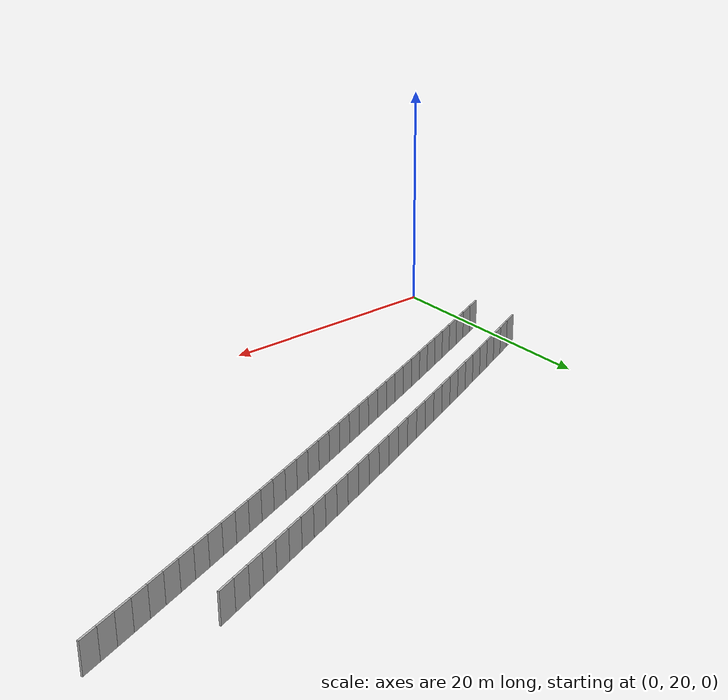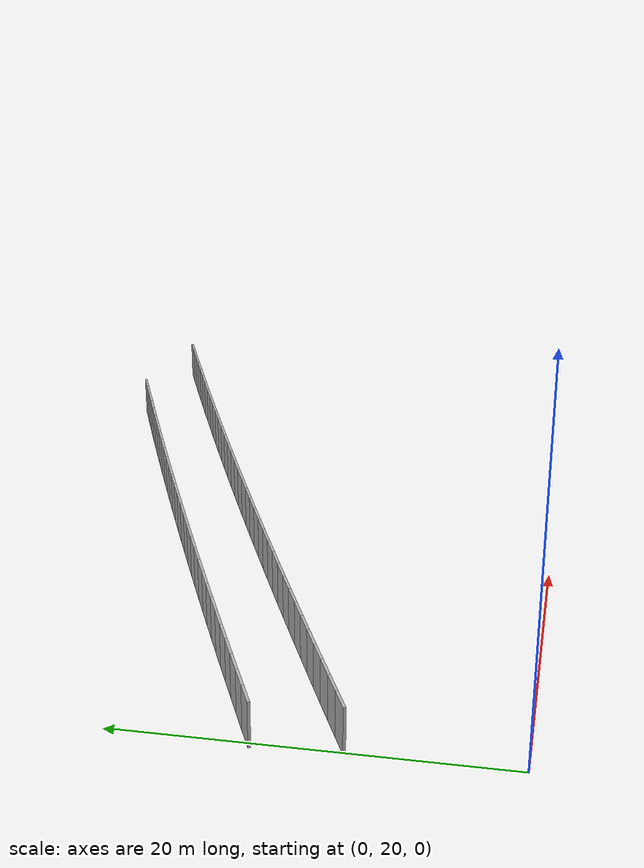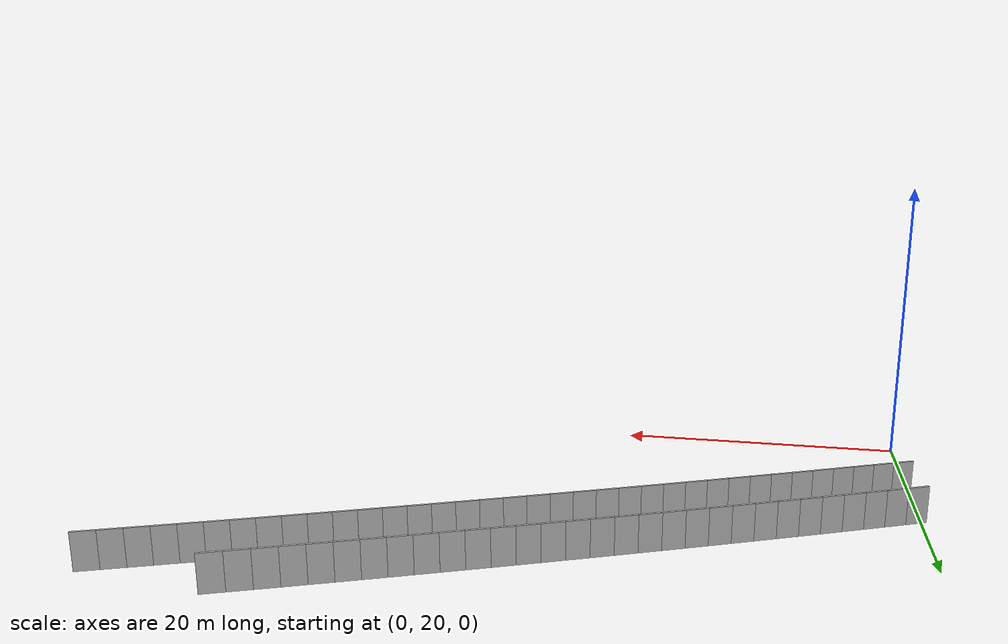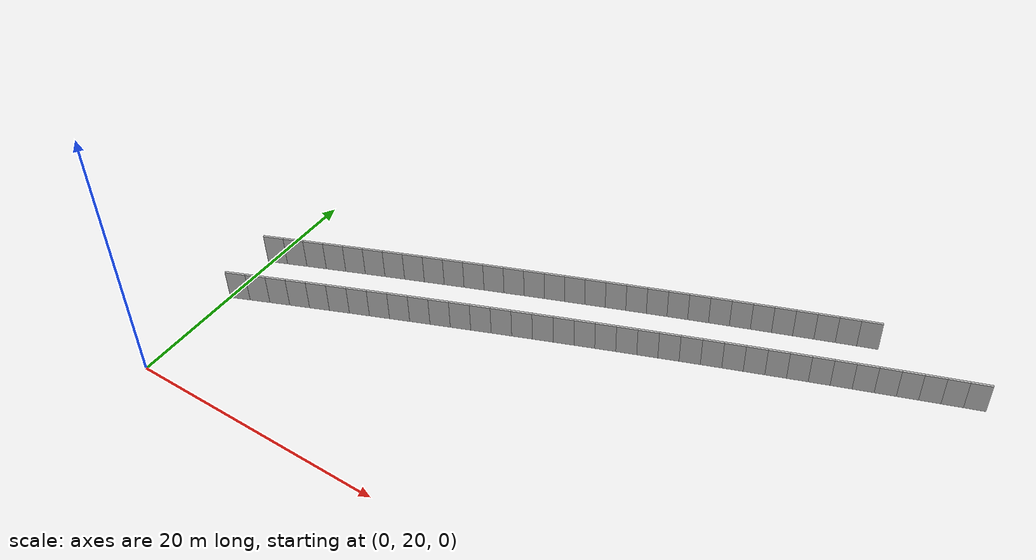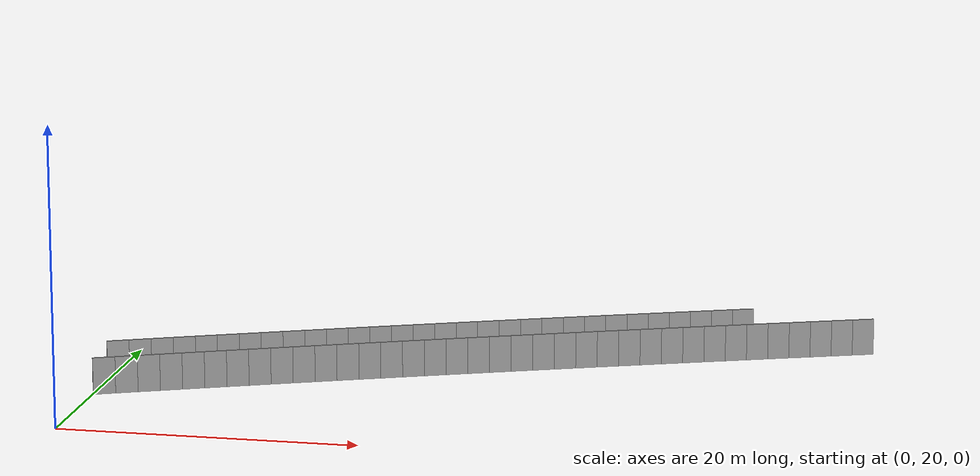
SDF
<?xml version="1.0" ?>
<sdf version="1.6">
  <model name="sps_1645">
    <pose frame="">0 0 0 0 -0 0</pose>
    <static>1</static>
    <self_collide>0</self_collide>
    <allow_auto_disable>0</allow_auto_disable>
    <link name="Wall3091">
      <kinematic>0</kinematic>
      <gravity>1</gravity>
      <self_collide>0</self_collide>
      <collision name="collision">
        <geometry>
          <box>
            <size>1.49646 0.15 2.5</size>
          </box>
        </geometry>
        <pose frame="">0 0 0 0 -0 0</pose>
      </collision>
      <visual name="visual">
        <geometry>
          <box>
            <size>1.49646 0.15 2.5</size>
          </box>
        </geometry>
        <pose frame="">0 0 0 0 -0 0</pose>
        <cast_shadows>1</cast_shadows>
        <transparency>0.0</transparency>
      </visual>
      <pose frame="">49.1362 48.5733 1.25 0 0 -2.78098</pose>
    </link>
    <link name="Wall3092">
      <kinematic>0</kinematic>
      <gravity>1</gravity>
      <self_collide>0</self_collide>
      <collision name="collision">
        <geometry>
          <box>
            <size>1.49649 0.15 2.5</size>
          </box>
        </geometry>
        <pose frame="">0 0 0 0 -0 0</pose>
      </collision>
      <visual name="visual">
        <geometry>
          <box>
            <size>1.49649 0.15 2.5</size>
          </box>
        </geometry>
        <pose frame="">0 0 0 0 -0 0</pose>
        <cast_shadows>1</cast_shadows>
        <transparency>0.0</transparency>
      </visual>
      <pose frame="">47.7364 48.0442 1.25 0 0 -2.77942</pose>
    </link>
    <link name="Wall3093">
      <kinematic>0</kinematic>
      <gravity>1</gravity>
      <self_collide>0</self_collide>
      <collision name="collision">
        <geometry>
          <box>
            <size>1.49645 0.15 2.5</size>
          </box>
        </geometry>
        <pose frame="">0 0 0 0 -0 0</pose>
      </collision>
      <visual name="visual">
        <geometry>
          <box>
            <size>1.49645 0.15 2.5</size>
          </box>
        </geometry>
        <pose frame="">0 0 0 0 -0 0</pose>
        <cast_shadows>1</cast_shadows>
        <transparency>0.0</transparency>
      </visual>
      <pose frame="">46.3374 47.5129 1.25 0 0 -2.77789</pose>
    </link>
    <link name="Wall3094">
      <kinematic>0</kinematic>
      <gravity>1</gravity>
      <self_collide>0</self_collide>
      <collision name="collision">
        <geometry>
          <box>
            <size>1.49657 0.15 2.5</size>
          </box>
        </geometry>
        <pose frame="">0 0 0 0 -0 0</pose>
      </collision>
      <visual name="visual">
        <geometry>
          <box>
            <size>1.49657 0.15 2.5</size>
          </box>
        </geometry>
        <pose frame="">0 0 0 0 -0 0</pose>
        <cast_shadows>1</cast_shadows>
        <transparency>0.0</transparency>
      </visual>
      <pose frame="">44.9392 46.9794 1.25 0 0 -2.7763</pose>
    </link>
    <link name="Wall3095">
      <kinematic>0</kinematic>
      <gravity>1</gravity>
      <self_collide>0</self_collide>
      <collision name="collision">
        <geometry>
          <box>
            <size>1.49665 0.15 2.5</size>
          </box>
        </geometry>
        <pose frame="">0 0 0 0 -0 0</pose>
      </collision>
      <visual name="visual">
        <geometry>
          <box>
            <size>1.49665 0.15 2.5</size>
          </box>
        </geometry>
        <pose frame="">0 0 0 0 -0 0</pose>
        <cast_shadows>1</cast_shadows>
        <transparency>0.0</transparency>
      </visual>
      <pose frame="">43.5418 46.4436 1.25 0 0 -2.77457</pose>
    </link>
    <link name="Wall3096">
      <kinematic>0</kinematic>
      <gravity>1</gravity>
      <self_collide>0</self_collide>
      <collision name="collision">
        <geometry>
          <box>
            <size>1.49647 0.15 2.5</size>
          </box>
        </geometry>
        <pose frame="">0 0 0 0 -0 0</pose>
      </collision>
      <visual name="visual">
        <geometry>
          <box>
            <size>1.49647 0.15 2.5</size>
          </box>
        </geometry>
        <pose frame="">0 0 0 0 -0 0</pose>
        <cast_shadows>1</cast_shadows>
        <transparency>0.0</transparency>
      </visual>
      <pose frame="">42.1453 45.9056 1.25 0 0 -2.77317</pose>
    </link>
    <link name="Wall3097">
      <kinematic>0</kinematic>
      <gravity>1</gravity>
      <self_collide>0</self_collide>
      <collision name="collision">
        <geometry>
          <box>
            <size>1.49652 0.15 2.5</size>
          </box>
        </geometry>
        <pose frame="">0 0 0 0 -0 0</pose>
      </collision>
      <visual name="visual">
        <geometry>
          <box>
            <size>1.49652 0.15 2.5</size>
          </box>
        </geometry>
        <pose frame="">0 0 0 0 -0 0</pose>
        <cast_shadows>1</cast_shadows>
        <transparency>0.0</transparency>
      </visual>
      <pose frame="">40.7497 45.3654 1.25 0 0 -2.77139</pose>
    </link>
    <link name="Wall3098">
      <kinematic>0</kinematic>
      <gravity>1</gravity>
      <self_collide>0</self_collide>
      <collision name="collision">
        <geometry>
          <box>
            <size>1.49655 0.15 2.5</size>
          </box>
        </geometry>
        <pose frame="">0 0 0 0 -0 0</pose>
      </collision>
      <visual name="visual">
        <geometry>
          <box>
            <size>1.49655 0.15 2.5</size>
          </box>
        </geometry>
        <pose frame="">0 0 0 0 -0 0</pose>
        <cast_shadows>1</cast_shadows>
        <transparency>0.0</transparency>
      </visual>
      <pose frame="">39.3549 44.823 1.25 0 0 -2.77</pose>
    </link>
    <link name="Wall3099">
      <kinematic>0</kinematic>
      <gravity>1</gravity>
      <self_collide>0</self_collide>
      <collision name="collision">
        <geometry>
          <box>
            <size>1.49644 0.15 2.5</size>
          </box>
        </geometry>
        <pose frame="">0 0 0 0 -0 0</pose>
      </collision>
      <visual name="visual">
        <geometry>
          <box>
            <size>1.49644 0.15 2.5</size>
          </box>
        </geometry>
        <pose frame="">0 0 0 0 -0 0</pose>
        <cast_shadows>1</cast_shadows>
        <transparency>0.0</transparency>
      </visual>
      <pose frame="">37.961 44.2785 1.25 0 0 -2.7684</pose>
    </link>
    <link name="Wall3100">
      <kinematic>0</kinematic>
      <gravity>1</gravity>
      <self_collide>0</self_collide>
      <collision name="collision">
        <geometry>
          <box>
            <size>1.49651 0.15 2.5</size>
          </box>
        </geometry>
        <pose frame="">0 0 0 0 -0 0</pose>
      </collision>
      <visual name="visual">
        <geometry>
          <box>
            <size>1.49651 0.15 2.5</size>
          </box>
        </geometry>
        <pose frame="">0 0 0 0 -0 0</pose>
        <cast_shadows>1</cast_shadows>
        <transparency>0.0</transparency>
      </visual>
      <pose frame="">36.568 43.7317 1.25 0 0 -2.76671</pose>
    </link>
    <link name="Wall3101">
      <kinematic>0</kinematic>
      <gravity>1</gravity>
      <self_collide>0</self_collide>
      <collision name="collision">
        <geometry>
          <box>
            <size>1.49645 0.15 2.5</size>
          </box>
        </geometry>
        <pose frame="">0 0 0 0 -0 0</pose>
      </collision>
      <visual name="visual">
        <geometry>
          <box>
            <size>1.49645 0.15 2.5</size>
          </box>
        </geometry>
        <pose frame="">0 0 0 0 -0 0</pose>
        <cast_shadows>1</cast_shadows>
        <transparency>0.0</transparency>
      </visual>
      <pose frame="">35.1758 43.1828 1.25 0 0 -2.76537</pose>
    </link>
    <link name="Wall3102">
      <kinematic>0</kinematic>
      <gravity>1</gravity>
      <self_collide>0</self_collide>
      <collision name="collision">
        <geometry>
          <box>
            <size>1.4965 0.15 2.5</size>
          </box>
        </geometry>
        <pose frame="">0 0 0 0 -0 0</pose>
      </collision>
      <visual name="visual">
        <geometry>
          <box>
            <size>1.4965 0.15 2.5</size>
          </box>
        </geometry>
        <pose frame="">0 0 0 0 -0 0</pose>
        <cast_shadows>1</cast_shadows>
        <transparency>0.0</transparency>
      </visual>
      <pose frame="">33.7845 42.6317 1.25 0 0 -2.7635</pose>
    </link>
    <link name="Wall3103">
      <kinematic>0</kinematic>
      <gravity>1</gravity>
      <self_collide>0</self_collide>
      <collision name="collision">
        <geometry>
          <box>
            <size>1.49656 0.15 2.5</size>
          </box>
        </geometry>
        <pose frame="">0 0 0 0 -0 0</pose>
      </collision>
      <visual name="visual">
        <geometry>
          <box>
            <size>1.49656 0.15 2.5</size>
          </box>
        </geometry>
        <pose frame="">0 0 0 0 -0 0</pose>
        <cast_shadows>1</cast_shadows>
        <transparency>0.0</transparency>
      </visual>
      <pose frame="">32.3941 42.0782 1.25 0 0 -2.76198</pose>
    </link>
    <link name="Wall3104">
      <kinematic>0</kinematic>
      <gravity>1</gravity>
      <self_collide>0</self_collide>
      <collision name="collision">
        <geometry>
          <box>
            <size>1.49636 0.15 2.5</size>
          </box>
        </geometry>
        <pose frame="">0 0 0 0 -0 0</pose>
      </collision>
      <visual name="visual">
        <geometry>
          <box>
            <size>1.49636 0.15 2.5</size>
          </box>
        </geometry>
        <pose frame="">0 0 0 0 -0 0</pose>
        <cast_shadows>1</cast_shadows>
        <transparency>0.0</transparency>
      </visual>
      <pose frame="">31.0046 41.5226 1.25 0 0 -2.76043</pose>
    </link>
    <link name="Wall3105">
      <kinematic>0</kinematic>
      <gravity>1</gravity>
      <self_collide>0</self_collide>
      <collision name="collision">
        <geometry>
          <box>
            <size>1.49655 0.15 2.5</size>
          </box>
        </geometry>
        <pose frame="">0 0 0 0 -0 0</pose>
      </collision>
      <visual name="visual">
        <geometry>
          <box>
            <size>1.49655 0.15 2.5</size>
          </box>
        </geometry>
        <pose frame="">0 0 0 0 -0 0</pose>
        <cast_shadows>1</cast_shadows>
        <transparency>0.0</transparency>
      </visual>
      <pose frame="">29.616 40.9648 1.25 0 0 -2.75881</pose>
    </link>
    <link name="Wall3106">
      <kinematic>0</kinematic>
      <gravity>1</gravity>
      <self_collide>0</self_collide>
      <collision name="collision">
        <geometry>
          <box>
            <size>1.49653 0.15 2.5</size>
          </box>
        </geometry>
        <pose frame="">0 0 0 0 -0 0</pose>
      </collision>
      <visual name="visual">
        <geometry>
          <box>
            <size>1.49653 0.15 2.5</size>
          </box>
        </geometry>
        <pose frame="">0 0 0 0 -0 0</pose>
        <cast_shadows>1</cast_shadows>
        <transparency>0.0</transparency>
      </visual>
      <pose frame="">28.2281 40.4048 1.25 0 0 -2.75731</pose>
    </link>
    <link name="Wall3107">
      <kinematic>0</kinematic>
      <gravity>1</gravity>
      <self_collide>0</self_collide>
      <collision name="collision">
        <geometry>
          <box>
            <size>1.49643 0.15 2.5</size>
          </box>
        </geometry>
        <pose frame="">0 0 0 0 -0 0</pose>
      </collision>
      <visual name="visual">
        <geometry>
          <box>
            <size>1.49643 0.15 2.5</size>
          </box>
        </geometry>
        <pose frame="">0 0 0 0 -0 0</pose>
        <cast_shadows>1</cast_shadows>
        <transparency>0.0</transparency>
      </visual>
      <pose frame="">26.8412 39.8427 1.25 0 0 -2.75575</pose>
    </link>
    <link name="Wall3108">
      <kinematic>0</kinematic>
      <gravity>1</gravity>
      <self_collide>0</self_collide>
      <collision name="collision">
        <geometry>
          <box>
            <size>1.49656 0.15 2.5</size>
          </box>
        </geometry>
        <pose frame="">0 0 0 0 -0 0</pose>
      </collision>
      <visual name="visual">
        <geometry>
          <box>
            <size>1.49656 0.15 2.5</size>
          </box>
        </geometry>
        <pose frame="">0 0 0 0 -0 0</pose>
        <cast_shadows>1</cast_shadows>
        <transparency>0.0</transparency>
      </visual>
      <pose frame="">25.4553 39.2783 1.25 0 0 -2.75402</pose>
    </link>
    <link name="Wall3109">
      <kinematic>0</kinematic>
      <gravity>1</gravity>
      <self_collide>0</self_collide>
      <collision name="collision">
        <geometry>
          <box>
            <size>1.49654 0.15 2.5</size>
          </box>
        </geometry>
        <pose frame="">0 0 0 0 -0 0</pose>
      </collision>
      <visual name="visual">
        <geometry>
          <box>
            <size>1.49654 0.15 2.5</size>
          </box>
        </geometry>
        <pose frame="">0 0 0 0 -0 0</pose>
        <cast_shadows>1</cast_shadows>
        <transparency>0.0</transparency>
      </visual>
      <pose frame="">24.0702 38.7116 1.25 0 0 -2.75243</pose>
    </link>
    <link name="Wall3110">
      <kinematic>0</kinematic>
      <gravity>1</gravity>
      <self_collide>0</self_collide>
      <collision name="collision">
        <geometry>
          <box>
            <size>1.49659 0.15 2.5</size>
          </box>
        </geometry>
        <pose frame="">0 0 0 0 -0 0</pose>
      </collision>
      <visual name="visual">
        <geometry>
          <box>
            <size>1.49659 0.15 2.5</size>
          </box>
        </geometry>
        <pose frame="">0 0 0 0 -0 0</pose>
        <cast_shadows>1</cast_shadows>
        <transparency>0.0</transparency>
      </visual>
      <pose frame="">22.6859 38.1427 1.25 0 0 -2.75085</pose>
    </link>
    <link name="Wall3111">
      <kinematic>0</kinematic>
      <gravity>1</gravity>
      <self_collide>0</self_collide>
      <collision name="collision">
        <geometry>
          <box>
            <size>1.49643 0.15 2.5</size>
          </box>
        </geometry>
        <pose frame="">0 0 0 0 -0 0</pose>
      </collision>
      <visual name="visual">
        <geometry>
          <box>
            <size>1.49643 0.15 2.5</size>
          </box>
        </geometry>
        <pose frame="">0 0 0 0 -0 0</pose>
        <cast_shadows>1</cast_shadows>
        <transparency>0.0</transparency>
      </visual>
      <pose frame="">21.3026 37.5717 1.25 0 0 -2.7494</pose>
    </link>
    <link name="Wall3112">
      <kinematic>0</kinematic>
      <gravity>1</gravity>
      <self_collide>0</self_collide>
      <collision name="collision">
        <geometry>
          <box>
            <size>1.49651 0.15 2.5</size>
          </box>
        </geometry>
        <pose frame="">0 0 0 0 -0 0</pose>
      </collision>
      <visual name="visual">
        <geometry>
          <box>
            <size>1.49651 0.15 2.5</size>
          </box>
        </geometry>
        <pose frame="">0 0 0 0 -0 0</pose>
        <cast_shadows>1</cast_shadows>
        <transparency>0.0</transparency>
      </visual>
      <pose frame="">19.9202 36.9986 1.25 0 0 -2.74779</pose>
    </link>
    <link name="Wall3113">
      <kinematic>0</kinematic>
      <gravity>1</gravity>
      <self_collide>0</self_collide>
      <collision name="collision">
        <geometry>
          <box>
            <size>1.49651 0.15 2.5</size>
          </box>
        </geometry>
        <pose frame="">0 0 0 0 -0 0</pose>
      </collision>
      <visual name="visual">
        <geometry>
          <box>
            <size>1.49651 0.15 2.5</size>
          </box>
        </geometry>
        <pose frame="">0 0 0 0 -0 0</pose>
        <cast_shadows>1</cast_shadows>
        <transparency>0.0</transparency>
      </visual>
      <pose frame="">18.5387 36.4233 1.25 0 0 -2.7462</pose>
    </link>
    <link name="Wall3114">
      <kinematic>0</kinematic>
      <gravity>1</gravity>
      <self_collide>0</self_collide>
      <collision name="collision">
        <geometry>
          <box>
            <size>1.49634 0.15 2.5</size>
          </box>
        </geometry>
        <pose frame="">0 0 0 0 -0 0</pose>
      </collision>
      <visual name="visual">
        <geometry>
          <box>
            <size>1.49634 0.15 2.5</size>
          </box>
        </geometry>
        <pose frame="">0 0 0 0 -0 0</pose>
        <cast_shadows>1</cast_shadows>
        <transparency>0.0</transparency>
      </visual>
      <pose frame="">17.1583 35.8458 1.25 0 0 -2.74456</pose>
    </link>
    <link name="Wall3115">
      <kinematic>0</kinematic>
      <gravity>1</gravity>
      <self_collide>0</self_collide>
      <collision name="collision">
        <geometry>
          <box>
            <size>1.49649 0.15 2.5</size>
          </box>
        </geometry>
        <pose frame="">0 0 0 0 -0 0</pose>
      </collision>
      <visual name="visual">
        <geometry>
          <box>
            <size>1.49649 0.15 2.5</size>
          </box>
        </geometry>
        <pose frame="">0 0 0 0 -0 0</pose>
        <cast_shadows>1</cast_shadows>
        <transparency>0.0</transparency>
      </visual>
      <pose frame="">15.7787 35.2661 1.25 0 0 -2.74305</pose>
    </link>
    <link name="Wall3116">
      <kinematic>0</kinematic>
      <gravity>1</gravity>
      <self_collide>0</self_collide>
      <collision name="collision">
        <geometry>
          <box>
            <size>1.49647 0.15 2.5</size>
          </box>
        </geometry>
        <pose frame="">0 0 0 0 -0 0</pose>
      </collision>
      <visual name="visual">
        <geometry>
          <box>
            <size>1.49647 0.15 2.5</size>
          </box>
        </geometry>
        <pose frame="">0 0 0 0 -0 0</pose>
        <cast_shadows>1</cast_shadows>
        <transparency>0.0</transparency>
      </visual>
      <pose frame="">14.4 34.6842 1.25 0 0 -2.74141</pose>
    </link>
    <link name="Wall3117">
      <kinematic>0</kinematic>
      <gravity>1</gravity>
      <self_collide>0</self_collide>
      <collision name="collision">
        <geometry>
          <box>
            <size>1.49654 0.15 2.5</size>
          </box>
        </geometry>
        <pose frame="">0 0 0 0 -0 0</pose>
      </collision>
      <visual name="visual">
        <geometry>
          <box>
            <size>1.49654 0.15 2.5</size>
          </box>
        </geometry>
        <pose frame="">0 0 0 0 -0 0</pose>
        <cast_shadows>1</cast_shadows>
        <transparency>0.0</transparency>
      </visual>
      <pose frame="">13.0221 34.1001 1.25 0 0 -2.73983</pose>
    </link>
    <link name="Wall3118">
      <kinematic>0</kinematic>
      <gravity>1</gravity>
      <self_collide>0</self_collide>
      <collision name="collision">
        <geometry>
          <box>
            <size>1.49643 0.15 2.5</size>
          </box>
        </geometry>
        <pose frame="">0 0 0 0 -0 0</pose>
      </collision>
      <visual name="visual">
        <geometry>
          <box>
            <size>1.49643 0.15 2.5</size>
          </box>
        </geometry>
        <pose frame="">0 0 0 0 -0 0</pose>
        <cast_shadows>1</cast_shadows>
        <transparency>0.0</transparency>
      </visual>
      <pose frame="">11.6453 33.5139 1.25 0 0 -2.73834</pose>
    </link>
    <link name="Wall3119">
      <kinematic>0</kinematic>
      <gravity>1</gravity>
      <self_collide>0</self_collide>
      <collision name="collision">
        <geometry>
          <box>
            <size>1.49664 0.15 2.5</size>
          </box>
        </geometry>
        <pose frame="">0 0 0 0 -0 0</pose>
      </collision>
      <visual name="visual">
        <geometry>
          <box>
            <size>1.49664 0.15 2.5</size>
          </box>
        </geometry>
        <pose frame="">0 0 0 0 -0 0</pose>
        <cast_shadows>1</cast_shadows>
        <transparency>0.0</transparency>
      </visual>
      <pose frame="">10.2692 32.9255 1.25 0 0 -2.73667</pose>
    </link>
    <link name="Wall3120">
      <kinematic>0</kinematic>
      <gravity>1</gravity>
      <self_collide>0</self_collide>
      <collision name="collision">
        <geometry>
          <box>
            <size>1.49631 0.15 2.5</size>
          </box>
        </geometry>
        <pose frame="">0 0 0 0 -0 0</pose>
      </collision>
      <visual name="visual">
        <geometry>
          <box>
            <size>1.49631 0.15 2.5</size>
          </box>
        </geometry>
        <pose frame="">0 0 0 0 -0 0</pose>
        <cast_shadows>1</cast_shadows>
        <transparency>0.0</transparency>
      </visual>
      <pose frame="">8.89425 32.3349 1.25 0 0 -2.73511</pose>
    </link>
    <link name="Wall3121">
      <kinematic>0</kinematic>
      <gravity>1</gravity>
      <self_collide>0</self_collide>
      <collision name="collision">
        <geometry>
          <box>
            <size>1.4967 0.15 2.5</size>
          </box>
        </geometry>
        <pose frame="">0 0 0 0 -0 0</pose>
      </collision>
      <visual name="visual">
        <geometry>
          <box>
            <size>1.4967 0.15 2.5</size>
          </box>
        </geometry>
        <pose frame="">0 0 0 0 -0 0</pose>
        <cast_shadows>1</cast_shadows>
        <transparency>0.0</transparency>
      </visual>
      <pose frame="">7.52016 31.7421 1.25 0 0 -2.73349</pose>
    </link>
    <link name="Wall3122">
      <kinematic>0</kinematic>
      <gravity>1</gravity>
      <self_collide>0</self_collide>
      <collision name="collision">
        <geometry>
          <box>
            <size>1.49643 0.15 2.5</size>
          </box>
        </geometry>
        <pose frame="">0 0 0 0 -0 0</pose>
      </collision>
      <visual name="visual">
        <geometry>
          <box>
            <size>1.49643 0.15 2.5</size>
          </box>
        </geometry>
        <pose frame="">0 0 0 0 -0 0</pose>
        <cast_shadows>1</cast_shadows>
        <transparency>0.0</transparency>
      </visual>
      <pose frame="">6.14696 31.1471 1.25 0 0 -2.73195</pose>
    </link>
    <link name="Wall3123">
      <kinematic>0</kinematic>
      <gravity>1</gravity>
      <self_collide>0</self_collide>
      <collision name="collision">
        <geometry>
          <box>
            <size>1.49665 0.15 2.5</size>
          </box>
        </geometry>
        <pose frame="">0 0 0 0 -0 0</pose>
      </collision>
      <visual name="visual">
        <geometry>
          <box>
            <size>1.49665 0.15 2.5</size>
          </box>
        </geometry>
        <pose frame="">0 0 0 0 -0 0</pose>
        <cast_shadows>1</cast_shadows>
        <transparency>0.0</transparency>
      </visual>
      <pose frame="">4.77474 30.5499 1.25 0 0 -2.73028</pose>
    </link>
    <link name="Wall3124">
      <kinematic>0</kinematic>
      <gravity>1</gravity>
      <self_collide>0</self_collide>
      <collision name="collision">
        <geometry>
          <box>
            <size>1.49629 0.15 2.5</size>
          </box>
        </geometry>
        <pose frame="">0 0 0 0 -0 0</pose>
      </collision>
      <visual name="visual">
        <geometry>
          <box>
            <size>1.49629 0.15 2.5</size>
          </box>
        </geometry>
        <pose frame="">0 0 0 0 -0 0</pose>
        <cast_shadows>1</cast_shadows>
        <transparency>0.0</transparency>
      </visual>
      <pose frame="">3.40356 29.9505 1.25 0 0 -2.7287</pose>
    </link>
    <link name="Wall3125">
      <kinematic>0</kinematic>
      <gravity>1</gravity>
      <self_collide>0</self_collide>
      <collision name="collision">
        <geometry>
          <box>
            <size>1.49657 0.15 2.5</size>
          </box>
        </geometry>
        <pose frame="">0 0 0 0 -0 0</pose>
      </collision>
      <visual name="visual">
        <geometry>
          <box>
            <size>1.49657 0.15 2.5</size>
          </box>
        </geometry>
        <pose frame="">0 0 0 0 -0 0</pose>
        <cast_shadows>1</cast_shadows>
        <transparency>0.0</transparency>
      </visual>
      <pose frame="">2.03338 29.3489 1.25 0 0 -2.72705</pose>
    </link>
    <link name="Wall3126">
      <kinematic>0</kinematic>
      <gravity>1</gravity>
      <self_collide>0</self_collide>
      <collision name="collision">
        <geometry>
          <box>
            <size>1.49642 0.15 2.5</size>
          </box>
        </geometry>
        <pose frame="">0 0 0 0 -0 0</pose>
      </collision>
      <visual name="visual">
        <geometry>
          <box>
            <size>1.49642 0.15 2.5</size>
          </box>
        </geometry>
        <pose frame="">0 0 0 0 -0 0</pose>
        <cast_shadows>1</cast_shadows>
        <transparency>0.0</transparency>
      </visual>
      <pose frame="">0.664054 28.7452 1.25 0 0 -2.72566</pose>
    </link>
    <link name="Wall5707">
      <kinematic>0</kinematic>
      <gravity>1</gravity>
      <self_collide>0</self_collide>
      <collision name="collision">
        <geometry>
          <box>
            <size>1.5031 0.15 2.5</size>
          </box>
        </geometry>
        <pose frame="">0 0 0 0 -0 0</pose>
      </collision>
      <visual name="visual">
        <geometry>
          <box>
            <size>1.5031 0.15 2.5</size>
          </box>
        </geometry>
        <pose frame="">0 0 0 0 -0 0</pose>
        <cast_shadows>1</cast_shadows>
        <transparency>0.0</transparency>
      </visual>
      <pose frame="">40.6466 49.7646 1.25 0 0 -2.77314</pose>
    </link>
    <link name="Wall5708">
      <kinematic>0</kinematic>
      <gravity>1</gravity>
      <self_collide>0</self_collide>
      <collision name="collision">
        <geometry>
          <box>
            <size>1.50318 0.15 2.5</size>
          </box>
        </geometry>
        <pose frame="">0 0 0 0 -0 0</pose>
      </collision>
      <visual name="visual">
        <geometry>
          <box>
            <size>1.50318 0.15 2.5</size>
          </box>
        </geometry>
        <pose frame="">0 0 0 0 -0 0</pose>
        <cast_shadows>1</cast_shadows>
        <transparency>0.0</transparency>
      </visual>
      <pose frame="">39.2447 49.2221 1.25 0 0 -2.77154</pose>
    </link>
    <link name="Wall5709">
      <kinematic>0</kinematic>
      <gravity>1</gravity>
      <self_collide>0</self_collide>
      <collision name="collision">
        <geometry>
          <box>
            <size>1.50322 0.15 2.5</size>
          </box>
        </geometry>
        <pose frame="">0 0 0 0 -0 0</pose>
      </collision>
      <visual name="visual">
        <geometry>
          <box>
            <size>1.50322 0.15 2.5</size>
          </box>
        </geometry>
        <pose frame="">0 0 0 0 -0 0</pose>
        <cast_shadows>1</cast_shadows>
        <transparency>0.0</transparency>
      </visual>
      <pose frame="">37.8437 48.6773 1.25 0 0 -2.7699</pose>
    </link>
    <link name="Wall5710">
      <kinematic>0</kinematic>
      <gravity>1</gravity>
      <self_collide>0</self_collide>
      <collision name="collision">
        <geometry>
          <box>
            <size>1.5029 0.15 2.5</size>
          </box>
        </geometry>
        <pose frame="">0 0 0 0 -0 0</pose>
      </collision>
      <visual name="visual">
        <geometry>
          <box>
            <size>1.5029 0.15 2.5</size>
          </box>
        </geometry>
        <pose frame="">0 0 0 0 -0 0</pose>
        <cast_shadows>1</cast_shadows>
        <transparency>0.0</transparency>
      </visual>
      <pose frame="">36.4437 48.1303 1.25 0 0 -2.76833</pose>
    </link>
    <link name="Wall5711">
      <kinematic>0</kinematic>
      <gravity>1</gravity>
      <self_collide>0</self_collide>
      <collision name="collision">
        <geometry>
          <box>
            <size>1.50311 0.15 2.5</size>
          </box>
        </geometry>
        <pose frame="">0 0 0 0 -0 0</pose>
      </collision>
      <visual name="visual">
        <geometry>
          <box>
            <size>1.50311 0.15 2.5</size>
          </box>
        </geometry>
        <pose frame="">0 0 0 0 -0 0</pose>
        <cast_shadows>1</cast_shadows>
        <transparency>0.0</transparency>
      </visual>
      <pose frame="">35.0446 47.5812 1.25 0 0 -2.76686</pose>
    </link>
    <link name="Wall5712">
      <kinematic>0</kinematic>
      <gravity>1</gravity>
      <self_collide>0</self_collide>
      <collision name="collision">
        <geometry>
          <box>
            <size>1.50304 0.15 2.5</size>
          </box>
        </geometry>
        <pose frame="">0 0 0 0 -0 0</pose>
      </collision>
      <visual name="visual">
        <geometry>
          <box>
            <size>1.50304 0.15 2.5</size>
          </box>
        </geometry>
        <pose frame="">0 0 0 0 -0 0</pose>
        <cast_shadows>1</cast_shadows>
        <transparency>0.0</transparency>
      </visual>
      <pose frame="">33.6464 47.0298 1.25 0 0 -2.7651</pose>
    </link>
    <link name="Wall5713">
      <kinematic>0</kinematic>
      <gravity>1</gravity>
      <self_collide>0</self_collide>
      <collision name="collision">
        <geometry>
          <box>
            <size>1.50317 0.15 2.5</size>
          </box>
        </geometry>
        <pose frame="">0 0 0 0 -0 0</pose>
      </collision>
      <visual name="visual">
        <geometry>
          <box>
            <size>1.50317 0.15 2.5</size>
          </box>
        </geometry>
        <pose frame="">0 0 0 0 -0 0</pose>
        <cast_shadows>1</cast_shadows>
        <transparency>0.0</transparency>
      </visual>
      <pose frame="">32.249 46.4761 1.25 0 0 -2.76356</pose>
    </link>
    <link name="Wall5714">
      <kinematic>0</kinematic>
      <gravity>1</gravity>
      <self_collide>0</self_collide>
      <collision name="collision">
        <geometry>
          <box>
            <size>1.50319 0.15 2.5</size>
          </box>
        </geometry>
        <pose frame="">0 0 0 0 -0 0</pose>
      </collision>
      <visual name="visual">
        <geometry>
          <box>
            <size>1.50319 0.15 2.5</size>
          </box>
        </geometry>
        <pose frame="">0 0 0 0 -0 0</pose>
        <cast_shadows>1</cast_shadows>
        <transparency>0.0</transparency>
      </visual>
      <pose frame="">30.8523 45.9202 1.25 0 0 -2.76199</pose>
    </link>
    <link name="Wall5715">
      <kinematic>0</kinematic>
      <gravity>1</gravity>
      <self_collide>0</self_collide>
      <collision name="collision">
        <geometry>
          <box>
            <size>1.5031 0.15 2.5</size>
          </box>
        </geometry>
        <pose frame="">0 0 0 0 -0 0</pose>
      </collision>
      <visual name="visual">
        <geometry>
          <box>
            <size>1.5031 0.15 2.5</size>
          </box>
        </geometry>
        <pose frame="">0 0 0 0 -0 0</pose>
        <cast_shadows>1</cast_shadows>
        <transparency>0.0</transparency>
      </visual>
      <pose frame="">29.4567 45.3621 1.25 0 0 -2.76039</pose>
    </link>
    <link name="Wall5716">
      <kinematic>0</kinematic>
      <gravity>1</gravity>
      <self_collide>0</self_collide>
      <collision name="collision">
        <geometry>
          <box>
            <size>1.50301 0.15 2.5</size>
          </box>
        </geometry>
        <pose frame="">0 0 0 0 -0 0</pose>
      </collision>
      <visual name="visual">
        <geometry>
          <box>
            <size>1.50301 0.15 2.5</size>
          </box>
        </geometry>
        <pose frame="">0 0 0 0 -0 0</pose>
        <cast_shadows>1</cast_shadows>
        <transparency>0.0</transparency>
      </visual>
      <pose frame="">28.0619 44.8018 1.25 0 0 -2.75879</pose>
    </link>
    <link name="Wall5717">
      <kinematic>0</kinematic>
      <gravity>1</gravity>
      <self_collide>0</self_collide>
      <collision name="collision">
        <geometry>
          <box>
            <size>1.50295 0.15 2.5</size>
          </box>
        </geometry>
        <pose frame="">0 0 0 0 -0 0</pose>
      </collision>
      <visual name="visual">
        <geometry>
          <box>
            <size>1.50295 0.15 2.5</size>
          </box>
        </geometry>
        <pose frame="">0 0 0 0 -0 0</pose>
        <cast_shadows>1</cast_shadows>
        <transparency>0.0</transparency>
      </visual>
      <pose frame="">26.6681 44.2394 1.25 0 0 -2.75738</pose>
    </link>
    <link name="Wall5718">
      <kinematic>0</kinematic>
      <gravity>1</gravity>
      <self_collide>0</self_collide>
      <collision name="collision">
        <geometry>
          <box>
            <size>1.50322 0.15 2.5</size>
          </box>
        </geometry>
        <pose frame="">0 0 0 0 -0 0</pose>
      </collision>
      <visual name="visual">
        <geometry>
          <box>
            <size>1.50322 0.15 2.5</size>
          </box>
        </geometry>
        <pose frame="">0 0 0 0 -0 0</pose>
        <cast_shadows>1</cast_shadows>
        <transparency>0.0</transparency>
      </visual>
      <pose frame="">25.2752 43.6747 1.25 0 0 -2.75552</pose>
    </link>
    <link name="Wall5719">
      <kinematic>0</kinematic>
      <gravity>1</gravity>
      <self_collide>0</self_collide>
      <collision name="collision">
        <geometry>
          <box>
            <size>1.50298 0.15 2.5</size>
          </box>
        </geometry>
        <pose frame="">0 0 0 0 -0 0</pose>
      </collision>
      <visual name="visual">
        <geometry>
          <box>
            <size>1.50298 0.15 2.5</size>
          </box>
        </geometry>
        <pose frame="">0 0 0 0 -0 0</pose>
        <cast_shadows>1</cast_shadows>
        <transparency>0.0</transparency>
      </visual>
      <pose frame="">23.8831 43.1078 1.25 0 0 -2.75419</pose>
    </link>
    <link name="Wall5720">
      <kinematic>0</kinematic>
      <gravity>1</gravity>
      <self_collide>0</self_collide>
      <collision name="collision">
        <geometry>
          <box>
            <size>1.50315 0.15 2.5</size>
          </box>
        </geometry>
        <pose frame="">0 0 0 0 -0 0</pose>
      </collision>
      <visual name="visual">
        <geometry>
          <box>
            <size>1.50315 0.15 2.5</size>
          </box>
        </geometry>
        <pose frame="">0 0 0 0 -0 0</pose>
        <cast_shadows>1</cast_shadows>
        <transparency>0.0</transparency>
      </visual>
      <pose frame="">22.4919 42.5388 1.25 0 0 -2.75252</pose>
    </link>
    <link name="Wall5721">
      <kinematic>0</kinematic>
      <gravity>1</gravity>
      <self_collide>0</self_collide>
      <collision name="collision">
        <geometry>
          <box>
            <size>1.50308 0.15 2.5</size>
          </box>
        </geometry>
        <pose frame="">0 0 0 0 -0 0</pose>
      </collision>
      <visual name="visual">
        <geometry>
          <box>
            <size>1.50308 0.15 2.5</size>
          </box>
        </geometry>
        <pose frame="">0 0 0 0 -0 0</pose>
        <cast_shadows>1</cast_shadows>
        <transparency>0.0</transparency>
      </visual>
      <pose frame="">21.1016 41.9675 1.25 0 0 -2.75092</pose>
    </link>
    <link name="Wall5722">
      <kinematic>0</kinematic>
      <gravity>1</gravity>
      <self_collide>0</self_collide>
      <collision name="collision">
        <geometry>
          <box>
            <size>1.5032 0.15 2.5</size>
          </box>
        </geometry>
        <pose frame="">0 0 0 0 -0 0</pose>
      </collision>
      <visual name="visual">
        <geometry>
          <box>
            <size>1.5032 0.15 2.5</size>
          </box>
        </geometry>
        <pose frame="">0 0 0 0 -0 0</pose>
        <cast_shadows>1</cast_shadows>
        <transparency>0.0</transparency>
      </visual>
      <pose frame="">19.7121 41.3939 1.25 0 0 -2.74924</pose>
    </link>
    <link name="Wall5723">
      <kinematic>0</kinematic>
      <gravity>1</gravity>
      <self_collide>0</self_collide>
      <collision name="collision">
        <geometry>
          <box>
            <size>1.50309 0.15 2.5</size>
          </box>
        </geometry>
        <pose frame="">0 0 0 0 -0 0</pose>
      </collision>
      <visual name="visual">
        <geometry>
          <box>
            <size>1.50309 0.15 2.5</size>
          </box>
        </geometry>
        <pose frame="">0 0 0 0 -0 0</pose>
        <cast_shadows>1</cast_shadows>
        <transparency>0.0</transparency>
      </visual>
      <pose frame="">18.3237 40.8181 1.25 0 0 -2.74772</pose>
    </link>
    <link name="Wall5724">
      <kinematic>0</kinematic>
      <gravity>1</gravity>
      <self_collide>0</self_collide>
      <collision name="collision">
        <geometry>
          <box>
            <size>1.50301 0.15 2.5</size>
          </box>
        </geometry>
        <pose frame="">0 0 0 0 -0 0</pose>
      </collision>
      <visual name="visual">
        <geometry>
          <box>
            <size>1.50301 0.15 2.5</size>
          </box>
        </geometry>
        <pose frame="">0 0 0 0 -0 0</pose>
        <cast_shadows>1</cast_shadows>
        <transparency>0.0</transparency>
      </visual>
      <pose frame="">16.9361 40.2402 1.25 0 0 -2.74615</pose>
    </link>
    <link name="Wall5725">
      <kinematic>0</kinematic>
      <gravity>1</gravity>
      <self_collide>0</self_collide>
      <collision name="collision">
        <geometry>
          <box>
            <size>1.503 0.15 2.5</size>
          </box>
        </geometry>
        <pose frame="">0 0 0 0 -0 0</pose>
      </collision>
      <visual name="visual">
        <geometry>
          <box>
            <size>1.503 0.15 2.5</size>
          </box>
        </geometry>
        <pose frame="">0 0 0 0 -0 0</pose>
        <cast_shadows>1</cast_shadows>
        <transparency>0.0</transparency>
      </visual>
      <pose frame="">15.5496 39.6602 1.25 0 0 -2.7447</pose>
    </link>
    <link name="Wall5726">
      <kinematic>0</kinematic>
      <gravity>1</gravity>
      <self_collide>0</self_collide>
      <collision name="collision">
        <geometry>
          <box>
            <size>1.50305 0.15 2.5</size>
          </box>
        </geometry>
        <pose frame="">0 0 0 0 -0 0</pose>
      </collision>
      <visual name="visual">
        <geometry>
          <box>
            <size>1.50305 0.15 2.5</size>
          </box>
        </geometry>
        <pose frame="">0 0 0 0 -0 0</pose>
        <cast_shadows>1</cast_shadows>
        <transparency>0.0</transparency>
      </visual>
      <pose frame="">14.1639 39.078 1.25 0 0 -2.74295</pose>
    </link>
    <link name="Wall5727">
      <kinematic>0</kinematic>
      <gravity>1</gravity>
      <self_collide>0</self_collide>
      <collision name="collision">
        <geometry>
          <box>
            <size>1.50315 0.15 2.5</size>
          </box>
        </geometry>
        <pose frame="">0 0 0 0 -0 0</pose>
      </collision>
      <visual name="visual">
        <geometry>
          <box>
            <size>1.50315 0.15 2.5</size>
          </box>
        </geometry>
        <pose frame="">0 0 0 0 -0 0</pose>
        <cast_shadows>1</cast_shadows>
        <transparency>0.0</transparency>
      </visual>
      <pose frame="">12.7791 38.4935 1.25 0 0 -2.74144</pose>
    </link>
    <link name="Wall5728">
      <kinematic>0</kinematic>
      <gravity>1</gravity>
      <self_collide>0</self_collide>
      <collision name="collision">
        <geometry>
          <box>
            <size>1.50287 0.15 2.5</size>
          </box>
        </geometry>
        <pose frame="">0 0 0 0 -0 0</pose>
      </collision>
      <visual name="visual">
        <geometry>
          <box>
            <size>1.50287 0.15 2.5</size>
          </box>
        </geometry>
        <pose frame="">0 0 0 0 -0 0</pose>
        <cast_shadows>1</cast_shadows>
        <transparency>0.0</transparency>
      </visual>
      <pose frame="">11.3953 37.9069 1.25 0 0 -2.7399</pose>
    </link>
    <link name="Wall5729">
      <kinematic>0</kinematic>
      <gravity>1</gravity>
      <self_collide>0</self_collide>
      <collision name="collision">
        <geometry>
          <box>
            <size>1.50313 0.15 2.5</size>
          </box>
        </geometry>
        <pose frame="">0 0 0 0 -0 0</pose>
      </collision>
      <visual name="visual">
        <geometry>
          <box>
            <size>1.50313 0.15 2.5</size>
          </box>
        </geometry>
        <pose frame="">0 0 0 0 -0 0</pose>
        <cast_shadows>1</cast_shadows>
        <transparency>0.0</transparency>
      </visual>
      <pose frame="">10.0124 37.3182 1.25 0 0 -2.73834</pose>
    </link>
    <link name="Wall5730">
      <kinematic>0</kinematic>
      <gravity>1</gravity>
      <self_collide>0</self_collide>
      <collision name="collision">
        <geometry>
          <box>
            <size>1.50305 0.15 2.5</size>
          </box>
        </geometry>
        <pose frame="">0 0 0 0 -0 0</pose>
      </collision>
      <visual name="visual">
        <geometry>
          <box>
            <size>1.50305 0.15 2.5</size>
          </box>
        </geometry>
        <pose frame="">0 0 0 0 -0 0</pose>
        <cast_shadows>1</cast_shadows>
        <transparency>0.0</transparency>
      </visual>
      <pose frame="">8.63036 36.7271 1.25 0 0 -2.73651</pose>
    </link>
    <link name="Wall5731">
      <kinematic>0</kinematic>
      <gravity>1</gravity>
      <self_collide>0</self_collide>
      <collision name="collision">
        <geometry>
          <box>
            <size>1.50307 0.15 2.5</size>
          </box>
        </geometry>
        <pose frame="">0 0 0 0 -0 0</pose>
      </collision>
      <visual name="visual">
        <geometry>
          <box>
            <size>1.50307 0.15 2.5</size>
          </box>
        </geometry>
        <pose frame="">0 0 0 0 -0 0</pose>
        <cast_shadows>1</cast_shadows>
        <transparency>0.0</transparency>
      </visual>
      <pose frame="">7.24935 36.1338 1.25 0 0 -2.73514</pose>
    </link>
    <link name="Wall5732">
      <kinematic>0</kinematic>
      <gravity>1</gravity>
      <self_collide>0</self_collide>
      <collision name="collision">
        <geometry>
          <box>
            <size>1.50306 0.15 2.5</size>
          </box>
        </geometry>
        <pose frame="">0 0 0 0 -0 0</pose>
      </collision>
      <visual name="visual">
        <geometry>
          <box>
            <size>1.50306 0.15 2.5</size>
          </box>
        </geometry>
        <pose frame="">0 0 0 0 -0 0</pose>
        <cast_shadows>1</cast_shadows>
        <transparency>0.0</transparency>
      </visual>
      <pose frame="">5.86925 35.5384 1.25 0 0 -2.73342</pose>
    </link>
    <link name="Wall5733">
      <kinematic>0</kinematic>
      <gravity>1</gravity>
      <self_collide>0</self_collide>
      <collision name="collision">
        <geometry>
          <box>
            <size>1.50311 0.15 2.5</size>
          </box>
        </geometry>
        <pose frame="">0 0 0 0 -0 0</pose>
      </collision>
      <visual name="visual">
        <geometry>
          <box>
            <size>1.50311 0.15 2.5</size>
          </box>
        </geometry>
        <pose frame="">0 0 0 0 -0 0</pose>
        <cast_shadows>1</cast_shadows>
        <transparency>0.0</transparency>
      </visual>
      <pose frame="">4.49007 34.9408 1.25 0 0 -2.73201</pose>
    </link>
    <link name="Wall5734">
      <kinematic>0</kinematic>
      <gravity>1</gravity>
      <self_collide>0</self_collide>
      <collision name="collision">
        <geometry>
          <box>
            <size>1.50319 0.15 2.5</size>
          </box>
        </geometry>
        <pose frame="">0 0 0 0 -0 0</pose>
      </collision>
      <visual name="visual">
        <geometry>
          <box>
            <size>1.50319 0.15 2.5</size>
          </box>
        </geometry>
        <pose frame="">0 0 0 0 -0 0</pose>
        <cast_shadows>1</cast_shadows>
        <transparency>0.0</transparency>
      </visual>
      <pose frame="">3.11178 34.341 1.25 0 0 -2.73027</pose>
    </link>
    <link name="Wall5735">
      <kinematic>0</kinematic>
      <gravity>1</gravity>
      <self_collide>0</self_collide>
      <collision name="collision">
        <geometry>
          <box>
            <size>1.50307 0.15 2.5</size>
          </box>
        </geometry>
        <pose frame="">0 0 0 0 -0 0</pose>
      </collision>
      <visual name="visual">
        <geometry>
          <box>
            <size>1.50307 0.15 2.5</size>
          </box>
        </geometry>
        <pose frame="">0 0 0 0 -0 0</pose>
        <cast_shadows>1</cast_shadows>
        <transparency>0.0</transparency>
      </visual>
      <pose frame="">1.73446 33.739 1.25 0 0 -2.72881</pose>
    </link>
    <link name="Wall5736">
      <kinematic>0</kinematic>
      <gravity>1</gravity>
      <self_collide>0</self_collide>
      <collision name="collision">
        <geometry>
          <box>
            <size>1.50311 0.15 2.5</size>
          </box>
        </geometry>
        <pose frame="">0 0 0 0 -0 0</pose>
      </collision>
      <visual name="visual">
        <geometry>
          <box>
            <size>1.50311 0.15 2.5</size>
          </box>
        </geometry>
        <pose frame="">0 0 0 0 -0 0</pose>
        <cast_shadows>1</cast_shadows>
        <transparency>0.0</transparency>
      </visual>
      <pose frame="">0.358146 33.1348 1.25 0 0 -2.72705</pose>
    </link>
  </model>
</sdf>
